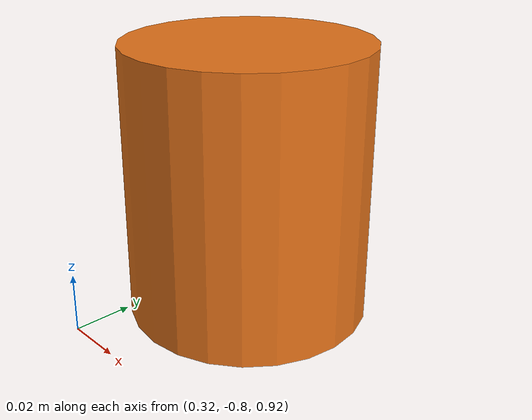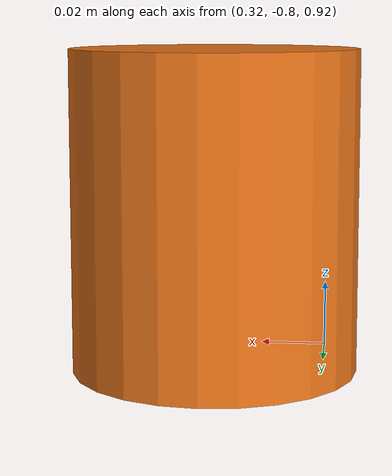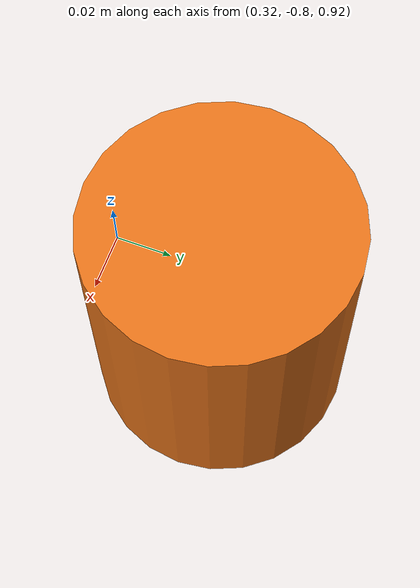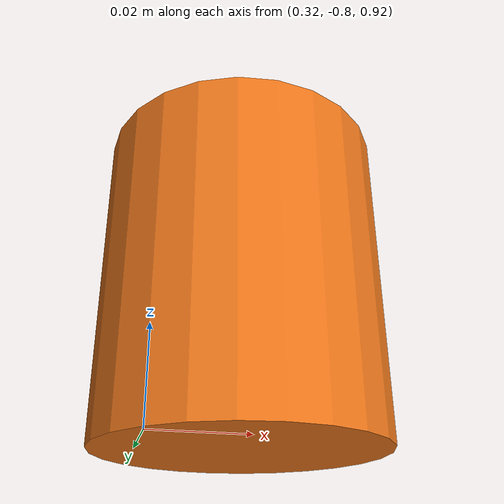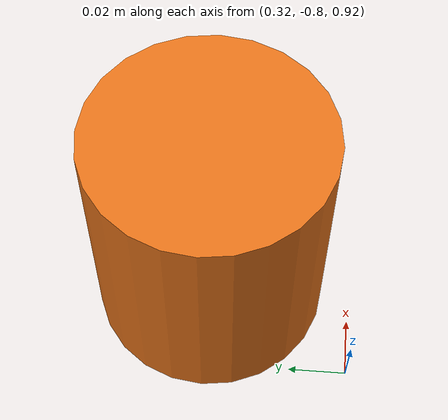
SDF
<?xml version="1.0" ?>
<sdf version="1.6">
  <model name="cylinder_block">
    <static>true</static>
    <pose>0.35 -0.75 0.97 0 0 0</pose>

    <link name="link">
      <visual name="visual">
        <geometry>
          <cylinder>
            <radius>0.04</radius>   <!-- диаметр 80 мм -->
            <length>0.09</length>   <!-- высота 90 мм -->
          </cylinder>
        </geometry>
        <material>
          <ambient>0.9 0.45 0.1 1</ambient>
          <diffuse>0.9 0.45 0.1 1</diffuse>
          <specular>0.2 0.2 0.2 1</specular>
        </material>
      </visual>
      <collision name="collision">
        <geometry>
          <cylinder>
            <radius>0.04</radius>
            <length>0.09</length>
          </cylinder>
        </geometry>
      </collision>
    </link>
  </model>
</sdf>
